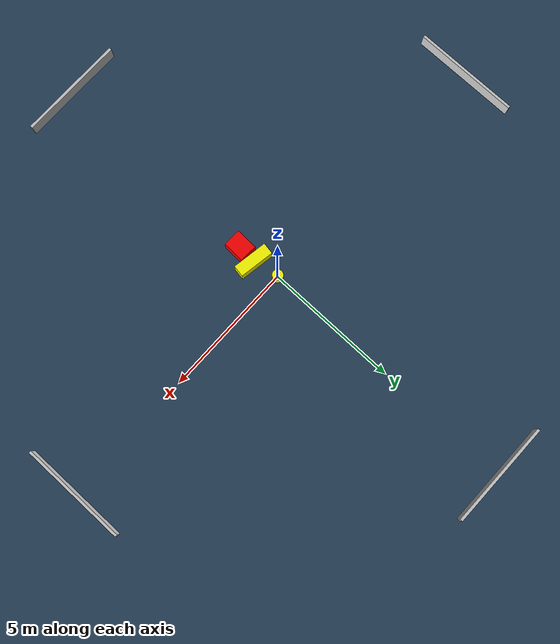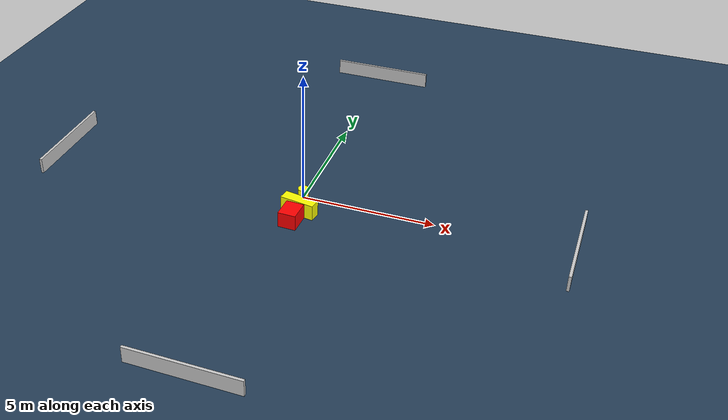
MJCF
<?xml version="1.0" ?>
<mujoco model="generated_environment">
  <option timestep="0.01" integrator="RK4" cone="elliptic"/>
  <default>
    <geom density="1"/>
  </default>
  <asset>
    <texture builtin="gradient" height="3072" name="skybox" rgb1="0.3 0.5 0.7" rgb2="0 0 0" type="skybox" width="512"/>
    <texture builtin="checker" height="300" name="groundplane" rgb1="0.2 0.3 0.4" rgb2="0.1 0.2 0.3" type="2d" width="300"/>
    <material name="groundplane" reflectance="0.2" texrepeat="5 5" texture="groundplane"/>
  </asset>
  <worldbody>
    <light dir="0 0 -1" directional="true" pos="0 0 1.5"/>
    <geom condim="3" friction="0.5 0.005 0.001" material="groundplane" name="floor" pos="0 0 0" size="0 0 0.05" type="plane"/>
    <body name="walls">
      <geom name="wall_1" condim="4" pos="-10.0 0.0 0.3" rgba="0.800000011920929 0.800000011920929 0.800000011920929 1.0" size="0.05 2.0 0.3" type="box"/>
      <geom name="wall_2" condim="4" pos="10.0 0.0 0.3" rgba="0.800000011920929 0.800000011920929 0.800000011920929 1.0" size="0.05 2.0 0.3" type="box"/>
      <geom name="wall_3" condim="4" pos="0.0 -10.0 0.3" rgba="0.800000011920929 0.800000011920929 0.800000011920929 1.0" size="2.0 0.05 0.3" type="box"/>
      <geom name="wall_4" condim="4" pos="0.0 10.0 0.3" rgba="0.800000011920929 0.800000011920929 0.800000011920929 1.0" size="2.0 0.05 0.3" type="box"/>
    </body>
    <body name="robot">
      <joint name="joint_x" type="slide" pos="0 0 0" axis="1 0 0"/>
      <joint name="joint_y" type="slide" pos="0 0 0" axis="0 1 0"/>
      <geom name="robot" type="cylinder" pos="0.0 0.0 0.2" size="0.2 0.2 0.0" mass="5.0" friction="1.0 0.005 0.0001" condim="4" rgba="1.0 1.0 0.0 1.0"/>
    </body>
    <body name="obstacle_1_movable">
      <geom name="obstacle_1_movable" condim="4" pos="0.20680440958395158 -0.9561464147289703 0.3" euler="0 0 80.74190439494183" friction="0.0 0.005 0.001" rgba="1.0 1.0 0.0 1.0" size="0.21169477719061228 0.6535207176402973 0.3" type="box" mass="0.1"/>
      <joint type="free"/>
    </body>
    <body name="obstacle_2_static">
      <geom name="obstacle_2_static" condim="4" pos="0.14628636505860257 -1.6352179544721366 0.3" euler="0 0 357.93594515086704" friction="0.0 0.005 0.001" rgba="1.0 0.0 0.0 1.0" size="0.33393043396359356 0.40536084345121826 0.3" type="box"/>
    </body>
  </worldbody>
  <actuator>
    <motor name="actuator_x" joint="joint_x" gear="1" ctrlrange="-1 1"/>
    <motor name="actuator_y" joint="joint_y" gear="1" ctrlrange="-1 1"/>
  </actuator>
</mujoco>
